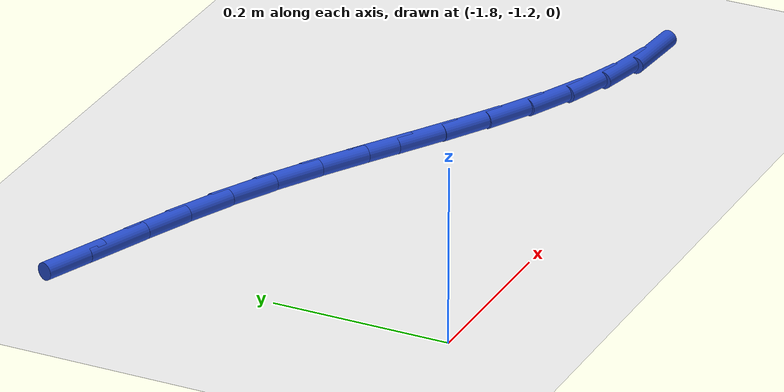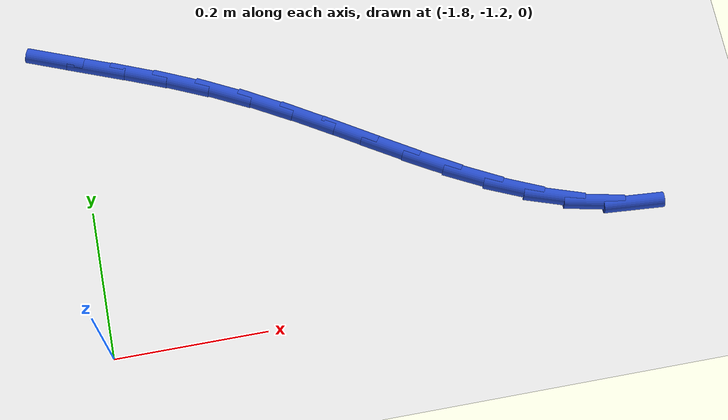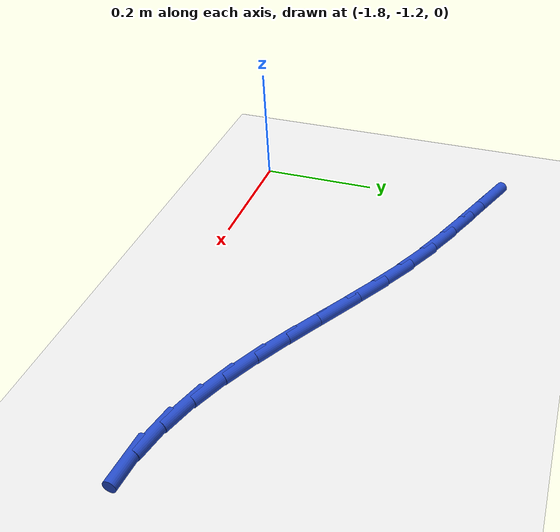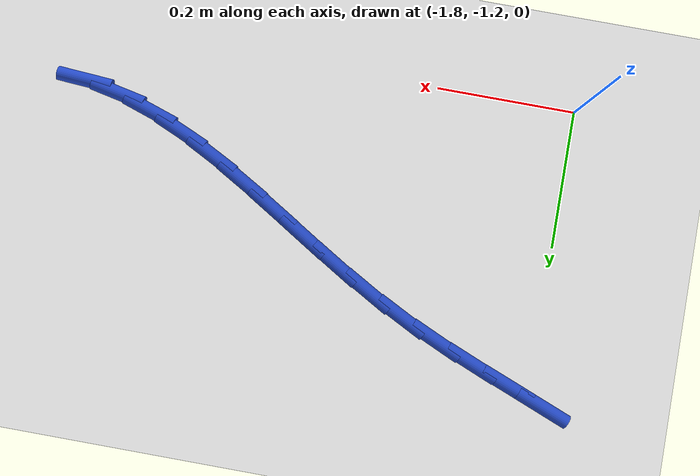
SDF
<sdf version="1.6">
 <world name="default">
  <model name="ground_plane">
   <static>1</static>
   <link name="link">
    <collision name="collision">
     <geometry><plane><normal>0 0 1</normal><size>100 100</size></plane></geometry>
     <surface><friction><ode><mu>100</mu><mu2>50</mu2></ode></friction></surface>
    </collision>
    <visual name="visual">
     <cast_shadows>0</cast_shadows>
     <geometry><plane><normal>0 0 1</normal><size>100 100</size></plane></geometry>
     <material>
      <script><uri>file://media/materials/scripts/gazebo.material</uri><name>Gazebo/WhiteGlow</name></script>
     </material>
    </visual>
   </link>
  </model>
  <model name="line">
   <link name="link_76">
    <pose>-1.8194337154339086 -0.7764300260775007 0.01 0 1.57 -0.375303180083133</pose>
    <collision name="collision">
     <geometry><cylinder><radius>0.01</radius><length>0.08</length></cylinder></geometry>
    </collision>
    <visual name="visual">
     <material>
      <script><name>Gazebo/Blue</name><uri>file://media/materials/scripts/gazebo.material</uri></script>
     </material>
     <geometry><cylinder><radius>0.01</radius><length>0.08</length></cylinder></geometry>
    </visual>
   </link>
   <link name="link_77">
    <pose>-1.7658838533821943 -0.7975274279288198 0.01 0 1.57 -0.3732709082478469</pose>
    <collision name="collision">
     <geometry><cylinder><radius>0.01</radius><length>0.08</length></cylinder></geometry>
    </collision>
    <visual name="visual">
     <material>
      <script><name>Gazebo/Blue</name><uri>file://media/materials/scripts/gazebo.material</uri></script>
     </material>
     <geometry><cylinder><radius>0.01</radius><length>0.08</length></cylinder></geometry>
    </visual>
   </link>
   <link name="link_78">
    <pose>-1.7116107010757506 -0.8187824731341896 0.01 0 1.57 -0.3899029884556439</pose>
    <collision name="collision">
     <geometry><cylinder><radius>0.01</radius><length>0.08</length></cylinder></geometry>
    </collision>
    <visual name="visual">
     <material>
      <script><name>Gazebo/Blue</name><uri>file://media/materials/scripts/gazebo.material</uri></script>
     </material>
     <geometry><cylinder><radius>0.01</radius><length>0.08</length></cylinder></geometry>
    </visual>
   </link>
   <link name="link_79">
    <pose>-1.6572110114565508 -0.8411375640814205 0.01 0 1.57 -0.42484558941613154</pose>
    <collision name="collision">
     <geometry><cylinder><radius>0.01</radius><length>0.08</length></cylinder></geometry>
    </collision>
    <visual name="visual">
     <material>
      <script><name>Gazebo/Blue</name><uri>file://media/materials/scripts/gazebo.material</uri></script>
     </material>
     <geometry><cylinder><radius>0.01</radius><length>0.08</length></cylinder></geometry>
    </visual>
   </link>
   <link name="link_80">
    <pose>-1.6032815374665697 -0.8655351031583243 0.01 0 1.57 -0.47547053375241916</pose>
    <collision name="collision">
     <geometry><cylinder><radius>0.01</radius><length>0.08</length></cylinder></geometry>
    </collision>
    <visual name="visual">
     <material>
      <script><name>Gazebo/Blue</name><uri>file://media/materials/scripts/gazebo.material</uri></script>
     </material>
     <geometry><cylinder><radius>0.01</radius><length>0.08</length></cylinder></geometry>
    </visual>
   </link>
   <link name="link_81">
    <pose>-1.5503645856740367 -0.892780307853259 0.01 0 1.57 -0.5198294907576717</pose>
    <collision name="collision">
     <geometry><cylinder><radius>0.01</radius><length>0.08</length></cylinder></geometry>
    </collision>
    <visual name="visual">
     <material>
      <script><name>Gazebo/Blue</name><uri>file://media/materials/scripts/gazebo.material</uri></script>
     </material>
     <geometry><cylinder><radius>0.01</radius><length>0.08</length></cylinder></geometry>
    </visual>
   </link>
   <link name="link_82">
    <pose>-1.4985167772055326 -0.9224546464147323 0.01 0 1.57 -0.5469663565129248</pose>
    <collision name="collision">
     <geometry><cylinder><radius>0.01</radius><length>0.08</length></cylinder></geometry>
    </collision>
    <visual name="visual">
     <material>
      <script><name>Gazebo/Blue</name><uri>file://media/materials/scripts/gazebo.material</uri></script>
     </material>
     <geometry><cylinder><radius>0.01</radius><length>0.08</length></cylinder></geometry>
    </visual>
   </link>
   <link name="link_83">
    <pose>-1.4475395651482974 -0.9534966571876685 0.01 0 1.57 -0.5571739264487354</pose>
    <collision name="collision">
     <geometry><cylinder><radius>0.01</radius><length>0.08</length></cylinder></geometry>
    </collision>
    <visual name="visual">
     <material>
      <script><name>Gazebo/Blue</name><uri>file://media/materials/scripts/gazebo.material</uri></script>
     </material>
     <geometry><cylinder><radius>0.01</radius><length>0.08</length></cylinder></geometry>
    </visual>
   </link>
   <link name="link_84">
    <pose>-1.3972321369866223 -0.984839170028226 0.01 0 1.57 -0.5502861731287666</pose>
    <collision name="collision">
     <geometry><cylinder><radius>0.01</radius><length>0.08</length></cylinder></geometry>
    </collision>
    <visual name="visual">
     <material>
      <script><name>Gazebo/Blue</name><uri>file://media/materials/scripts/gazebo.material</uri></script>
     </material>
     <geometry><cylinder><radius>0.01</radius><length>0.08</length></cylinder></geometry>
    </visual>
   </link>
   <link name="link_85">
    <pose>-1.3473936802047968 -1.015415014792563 0.01 0 1.57 -0.5254514541741986</pose>
    <collision name="collision">
     <geometry><cylinder><radius>0.01</radius><length>0.08</length></cylinder></geometry>
    </collision>
    <visual name="visual">
     <material>
      <script><name>Gazebo/Blue</name><uri>file://media/materials/scripts/gazebo.material</uri></script>
     </material>
     <geometry><cylinder><radius>0.01</radius><length>0.08</length></cylinder></geometry>
    </visual>
   </link>
   <link name="link_86">
    <pose>-1.2978233822871141 -1.0441570213368372 0.01 0 1.57 -0.48109957248043056</pose>
    <collision name="collision">
     <geometry><cylinder><radius>0.01</radius><length>0.08</length></cylinder></geometry>
    </collision>
    <visual name="visual">
     <material>
      <script><name>Gazebo/Blue</name><uri>file://media/materials/scripts/gazebo.material</uri></script>
     </material>
     <geometry><cylinder><radius>0.01</radius><length>0.08</length></cylinder></geometry>
    </visual>
   </link>
   <link name="link_87">
    <pose>-1.2483204307178648 -1.0699980195172076 0.01 0 1.57 -0.4150602936114782</pose>
    <collision name="collision">
     <geometry><cylinder><radius>0.01</radius><length>0.08</length></cylinder></geometry>
    </collision>
    <visual name="visual">
     <material>
      <script><name>Gazebo/Blue</name><uri>file://media/materials/scripts/gazebo.material</uri></script>
     </material>
     <geometry><cylinder><radius>0.01</radius><length>0.08</length></cylinder></geometry>
    </visual>
   </link>
   <link name="link_88">
    <pose>-1.1986840129813392 -1.091870839189832 0.01 0 1.57 -0.3249992270585227</pose>
    <collision name="collision">
     <geometry><cylinder><radius>0.01</radius><length>0.08</length></cylinder></geometry>
    </collision>
    <visual name="visual">
     <material>
      <script><name>Gazebo/Blue</name><uri>file://media/materials/scripts/gazebo.material</uri></script>
     </material>
     <geometry><cylinder><radius>0.01</radius><length>0.08</length></cylinder></geometry>
    </visual>
   </link>
   <link name="link_89">
    <pose>-1.1487133165618273 -1.1087083102108688 0.01 0 1.57 -0.20943222945449116</pose>
    <collision name="collision">
     <geometry><cylinder><radius>0.01</radius><length>0.08</length></cylinder></geometry>
    </collision>
    <visual name="visual">
     <material>
      <script><name>Gazebo/Blue</name><uri>file://media/materials/scripts/gazebo.material</uri></script>
     </material>
     <geometry><cylinder><radius>0.01</radius><length>0.08</length></cylinder></geometry>
    </visual>
   </link>
   <link name="link_90">
    <pose>-1.0982075289436226 -1.1194432624364763 0.01 0 1.57 -0.07194449500380021</pose>
    <collision name="collision">
     <geometry><cylinder><radius>0.01</radius><length>0.08</length></cylinder></geometry>
    </collision>
    <visual name="visual">
     <material>
      <script><name>Gazebo/Blue</name><uri>file://media/materials/scripts/gazebo.material</uri></script>
     </material>
     <geometry><cylinder><radius>0.01</radius><length>0.08</length></cylinder></geometry>
    </visual>
   </link>
  </model>
 </world>
</sdf>
